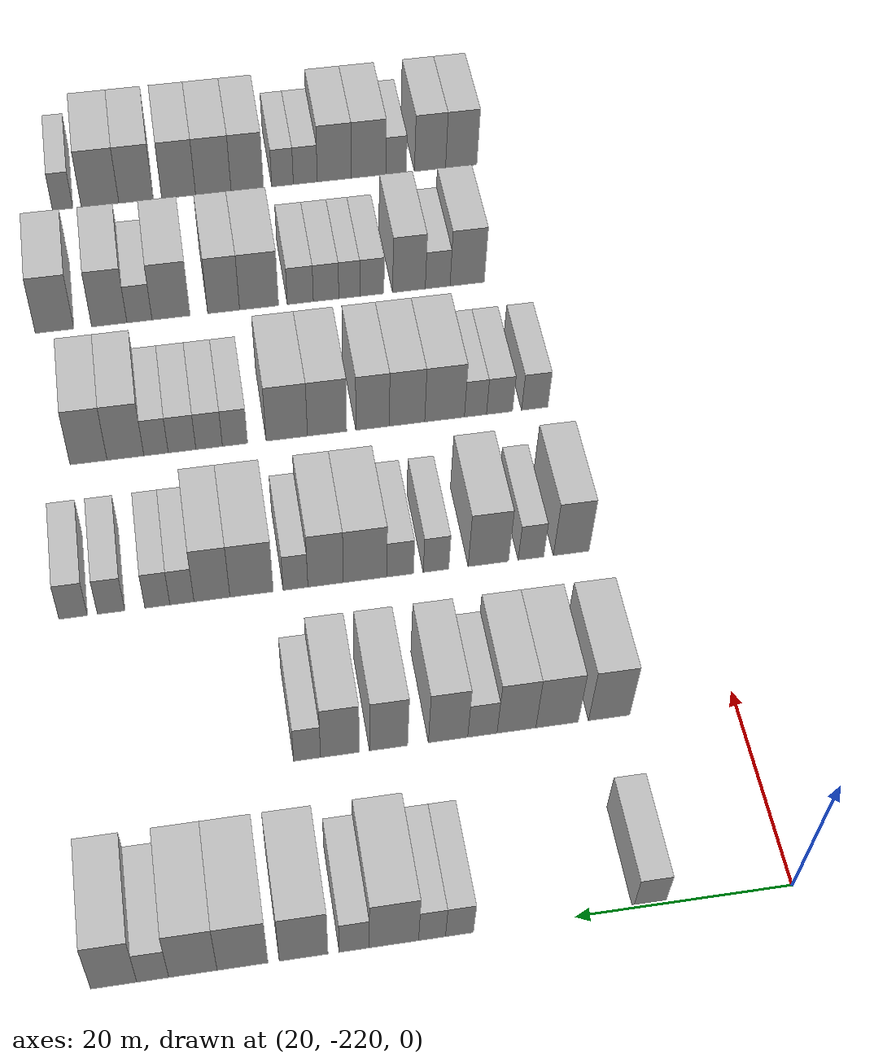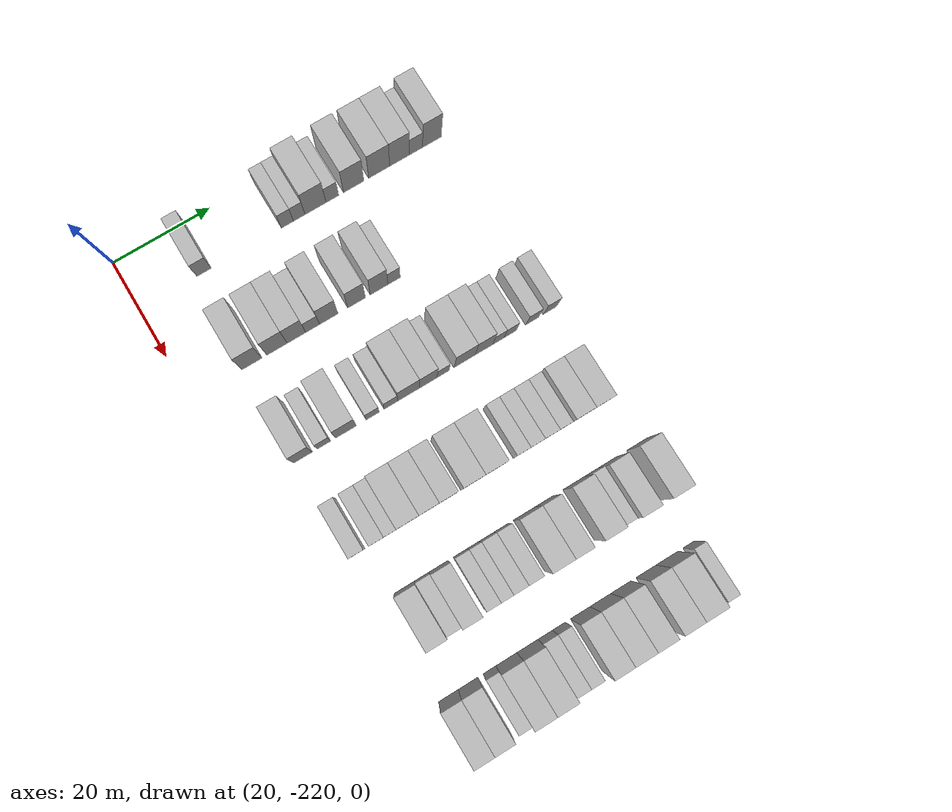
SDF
<sdf version="1.6">
 <world name="default">
  <model name="building_37">
   <static>1</static>
   <pose>25.0000 -206.7045 0 0.000000 0.000000 0.000000</pose>
   <link name="link">
    <pose>0 0 3.00 0 0 0</pose>
    <collision name="collision"><geometry><box><size>10.0000 2.9430 6.0000</size></box></geometry></collision>
    <visual name="visual">
     <cast_shadows>0</cast_shadows>
     <geometry><box><size>10.0000 2.9430 6.0000</size></box></geometry>
     <material>
      <script>
       <uri>model://HANNAS_wall/materials/scripts</uri>
       <uri>model://HANNAS_wall/materials/textures</uri>
       <name>vrc/HANNAS_wall</name>
      </script>
     </material>
    </visual>
   </link>
  </model>
  <model name="building_38">
   <static>1</static>
   <pose>25.0000 -189.4666 0 0.000000 0.000000 0.000000</pose>
   <link name="link">
    <pose>0 0 3.00 0 0 0</pose>
    <collision name="collision"><geometry><box><size>10.0000 2.5109 6.0000</size></box></geometry></collision>
    <visual name="visual">
     <cast_shadows>0</cast_shadows>
     <geometry><box><size>10.0000 2.5109 6.0000</size></box></geometry>
     <material>
      <script>
       <uri>model://HANNAS_wall/materials/scripts</uri>
       <uri>model://HANNAS_wall/materials/textures</uri>
       <name>vrc/HANNAS_wall</name>
      </script>
     </material>
    </visual>
   </link>
  </model>
  <model name="building_39">
   <static>1</static>
   <pose>25.0000 -187.0037 0 0.000000 0.000000 0.000000</pose>
   <link name="link">
    <pose>0 0 3.00 0 0 0</pose>
    <collision name="collision"><geometry><box><size>10.0000 2.4149 6.0000</size></box></geometry></collision>
    <visual name="visual">
     <cast_shadows>0</cast_shadows>
     <geometry><box><size>10.0000 2.4149 6.0000</size></box></geometry>
     <material>
      <script>
       <uri>model://HANNAS_wall/materials/scripts</uri>
       <uri>model://HANNAS_wall/materials/textures</uri>
       <name>vrc/HANNAS_wall</name>
      </script>
     </material>
    </visual>
   </link>
  </model>
  <model name="building_40">
   <static>1</static>
   <pose>25.0000 -183.5904 0 0.000000 0.000000 0.000000</pose>
   <link name="link">
    <pose>0 0 4.50 0 0 0</pose>
    <collision name="collision"><geometry><box><size>10.0000 4.4115 9.0000</size></box></geometry></collision>
    <visual name="visual">
     <cast_shadows>0</cast_shadows>
     <geometry><box><size>10.0000 4.4115 9.0000</size></box></geometry>
     <material>
      <script>
       <uri>model://HANNAS_wall/materials/scripts</uri>
       <uri>model://HANNAS_wall/materials/textures</uri>
       <name>vrc/HANNAS_wall</name>
      </script>
     </material>
    </visual>
   </link>
  </model>
  <model name="building_41">
   <static>1</static>
   <pose>25.0000 -180.0498 0 0.000000 0.000000 0.000000</pose>
   <link name="link">
    <pose>0 0 3.00 0 0 0</pose>
    <collision name="collision"><geometry><box><size>10.0000 2.6697 6.0000</size></box></geometry></collision>
    <visual name="visual">
     <cast_shadows>0</cast_shadows>
     <geometry><box><size>10.0000 2.6697 6.0000</size></box></geometry>
     <material>
      <script>
       <uri>model://HANNAS_wall/materials/scripts</uri>
       <uri>model://HANNAS_wall/materials/textures</uri>
       <name>vrc/HANNAS_wall</name>
      </script>
     </material>
    </visual>
   </link>
  </model>
  <model name="building_42">
   <static>1</static>
   <pose>25.0000 -175.5593 0 0.000000 0.000000 0.000000</pose>
   <link name="link">
    <pose>0 0 4.50 0 0 0</pose>
    <collision name="collision"><geometry><box><size>10.0000 4.3114 9.0000</size></box></geometry></collision>
    <visual name="visual">
     <cast_shadows>0</cast_shadows>
     <geometry><box><size>10.0000 4.3114 9.0000</size></box></geometry>
     <material>
      <script>
       <uri>model://HANNAS_wall/materials/scripts</uri>
       <uri>model://HANNAS_wall/materials/textures</uri>
       <name>vrc/HANNAS_wall</name>
      </script>
     </material>
    </visual>
   </link>
  </model>
  <model name="building_43">
   <static>1</static>
   <pose>25.0000 -170.1686 0 0.000000 0.000000 0.000000</pose>
   <link name="link">
    <pose>0 0 4.50 0 0 0</pose>
    <collision name="collision"><geometry><box><size>10.0000 4.4700 9.0000</size></box></geometry></collision>
    <visual name="visual">
     <cast_shadows>0</cast_shadows>
     <geometry><box><size>10.0000 4.4700 9.0000</size></box></geometry>
     <material>
      <script>
       <uri>model://HANNAS_wall/materials/scripts</uri>
       <uri>model://HANNAS_wall/materials/textures</uri>
       <name>vrc/HANNAS_wall</name>
      </script>
     </material>
    </visual>
   </link>
  </model>
  <model name="building_44">
   <static>1</static>
   <pose>25.0000 -165.8126 0 0.000000 0.000000 0.000000</pose>
   <link name="link">
    <pose>0 0 4.50 0 0 0</pose>
    <collision name="collision"><geometry><box><size>10.0000 4.2421 9.0000</size></box></geometry></collision>
    <visual name="visual">
     <cast_shadows>0</cast_shadows>
     <geometry><box><size>10.0000 4.2421 9.0000</size></box></geometry>
     <material>
      <script>
       <uri>model://HANNAS_wall/materials/scripts</uri>
       <uri>model://HANNAS_wall/materials/textures</uri>
       <name>vrc/HANNAS_wall</name>
      </script>
     </material>
    </visual>
   </link>
  </model>
  <model name="building_45">
   <static>1</static>
   <pose>25.0000 -162.2999 0 0.000000 0.000000 0.000000</pose>
   <link name="link">
    <pose>0 0 3.00 0 0 0</pose>
    <collision name="collision"><geometry><box><size>10.0000 2.7833 6.0000</size></box></geometry></collision>
    <visual name="visual">
     <cast_shadows>0</cast_shadows>
     <geometry><box><size>10.0000 2.7833 6.0000</size></box></geometry>
     <material>
      <script>
       <uri>model://HANNAS_wall/materials/scripts</uri>
       <uri>model://HANNAS_wall/materials/textures</uri>
       <name>vrc/HANNAS_wall</name>
      </script>
     </material>
    </visual>
   </link>
  </model>
  <model name="building_46">
   <static>1</static>
   <pose>25.0000 -158.9069 0 0.000000 0.000000 0.000000</pose>
   <link name="link">
    <pose>0 0 4.50 0 0 0</pose>
    <collision name="collision"><geometry><box><size>10.0000 4.0026 9.0000</size></box></geometry></collision>
    <visual name="visual">
     <cast_shadows>0</cast_shadows>
     <geometry><box><size>10.0000 4.0026 9.0000</size></box></geometry>
     <material>
      <script>
       <uri>model://HANNAS_wall/materials/scripts</uri>
       <uri>model://HANNAS_wall/materials/textures</uri>
       <name>vrc/HANNAS_wall</name>
      </script>
     </material>
    </visual>
   </link>
  </model>
  <model name="building_205">
   <static>1</static>
   <pose>44.0000 -207.5857 0 0.000000 0.000000 0.000000</pose>
   <link name="link">
    <pose>0 0 4.50 0 0 0</pose>
    <collision name="collision"><geometry><box><size>10.0000 4.0561 9.0000</size></box></geometry></collision>
    <visual name="visual">
     <cast_shadows>0</cast_shadows>
     <geometry><box><size>10.0000 4.0561 9.0000</size></box></geometry>
     <material>
      <script>
       <uri>model://HANNAS_wall/materials/scripts</uri>
       <uri>model://HANNAS_wall/materials/textures</uri>
       <name>vrc/HANNAS_wall</name>
      </script>
     </material>
    </visual>
   </link>
  </model>
  <model name="building_206">
   <static>1</static>
   <pose>44.0000 -202.4815 0 0.000000 0.000000 0.000000</pose>
   <link name="link">
    <pose>0 0 4.50 0 0 0</pose>
    <collision name="collision"><geometry><box><size>10.0000 4.1524 9.0000</size></box></geometry></collision>
    <visual name="visual">
     <cast_shadows>0</cast_shadows>
     <geometry><box><size>10.0000 4.1524 9.0000</size></box></geometry>
     <material>
      <script>
       <uri>model://HANNAS_wall/materials/scripts</uri>
       <uri>model://HANNAS_wall/materials/textures</uri>
       <name>vrc/HANNAS_wall</name>
      </script>
     </material>
    </visual>
   </link>
  </model>
  <model name="building_207">
   <static>1</static>
   <pose>44.0000 -198.5167 0 0.000000 0.000000 0.000000</pose>
   <link name="link">
    <pose>0 0 4.50 0 0 0</pose>
    <collision name="collision"><geometry><box><size>10.0000 3.7772 9.0000</size></box></geometry></collision>
    <visual name="visual">
     <cast_shadows>0</cast_shadows>
     <geometry><box><size>10.0000 3.7772 9.0000</size></box></geometry>
     <material>
      <script>
       <uri>model://HANNAS_wall/materials/scripts</uri>
       <uri>model://HANNAS_wall/materials/textures</uri>
       <name>vrc/HANNAS_wall</name>
      </script>
     </material>
    </visual>
   </link>
  </model>
  <model name="building_208">
   <static>1</static>
   <pose>44.0000 -195.2069 0 0.000000 0.000000 0.000000</pose>
   <link name="link">
    <pose>0 0 3.00 0 0 0</pose>
    <collision name="collision"><geometry><box><size>10.0000 2.8422 6.0000</size></box></geometry></collision>
    <visual name="visual">
     <cast_shadows>0</cast_shadows>
     <geometry><box><size>10.0000 2.8422 6.0000</size></box></geometry>
     <material>
      <script>
       <uri>model://HANNAS_wall/materials/scripts</uri>
       <uri>model://HANNAS_wall/materials/textures</uri>
       <name>vrc/HANNAS_wall</name>
      </script>
     </material>
    </visual>
   </link>
  </model>
  <model name="building_209">
   <static>1</static>
   <pose>44.0000 -191.8898 0 0.000000 0.000000 0.000000</pose>
   <link name="link">
    <pose>0 0 4.50 0 0 0</pose>
    <collision name="collision"><geometry><box><size>10.0000 3.7921 9.0000</size></box></geometry></collision>
    <visual name="visual">
     <cast_shadows>0</cast_shadows>
     <geometry><box><size>10.0000 3.7921 9.0000</size></box></geometry>
     <material>
      <script>
       <uri>model://HANNAS_wall/materials/scripts</uri>
       <uri>model://HANNAS_wall/materials/textures</uri>
       <name>vrc/HANNAS_wall</name>
      </script>
     </material>
    </visual>
   </link>
  </model>
  <model name="building_210">
   <static>1</static>
   <pose>44.0000 -186.1629 0 0.000000 0.000000 0.000000</pose>
   <link name="link">
    <pose>0 0 4.50 0 0 0</pose>
    <collision name="collision"><geometry><box><size>10.0000 3.6616 9.0000</size></box></geometry></collision>
    <visual name="visual">
     <cast_shadows>0</cast_shadows>
     <geometry><box><size>10.0000 3.6616 9.0000</size></box></geometry>
     <material>
      <script>
       <uri>model://HANNAS_wall/materials/scripts</uri>
       <uri>model://HANNAS_wall/materials/textures</uri>
       <name>vrc/HANNAS_wall</name>
      </script>
     </material>
    </visual>
   </link>
  </model>
  <model name="building_211">
   <static>1</static>
   <pose>44.0000 -181.4975 0 0.000000 0.000000 0.000000</pose>
   <link name="link">
    <pose>0 0 4.50 0 0 0</pose>
    <collision name="collision"><geometry><box><size>10.0000 3.6692 9.0000</size></box></geometry></collision>
    <visual name="visual">
     <cast_shadows>0</cast_shadows>
     <geometry><box><size>10.0000 3.6692 9.0000</size></box></geometry>
     <material>
      <script>
       <uri>model://HANNAS_wall/materials/scripts</uri>
       <uri>model://HANNAS_wall/materials/textures</uri>
       <name>vrc/HANNAS_wall</name>
      </script>
     </material>
    </visual>
   </link>
  </model>
  <model name="building_212">
   <static>1</static>
   <pose>44.0000 -178.3817 0 0.000000 0.000000 0.000000</pose>
   <link name="link">
    <pose>0 0 3.00 0 0 0</pose>
    <collision name="collision"><geometry><box><size>10.0000 2.5624 6.0000</size></box></geometry></collision>
    <visual name="visual">
     <cast_shadows>0</cast_shadows>
     <geometry><box><size>10.0000 2.5624 6.0000</size></box></geometry>
     <material>
      <script>
       <uri>model://HANNAS_wall/materials/scripts</uri>
       <uri>model://HANNAS_wall/materials/textures</uri>
       <name>vrc/HANNAS_wall</name>
      </script>
     </material>
    </visual>
   </link>
  </model>
  <model name="building_363">
   <static>1</static>
   <pose>63.0000 -208.1413 0 0.000000 0.000000 0.000000</pose>
   <link name="link">
    <pose>0 0 4.50 0 0 0</pose>
    <collision name="collision"><geometry><box><size>10.0000 3.7291 9.0000</size></box></geometry></collision>
    <visual name="visual">
     <cast_shadows>0</cast_shadows>
     <geometry><box><size>10.0000 3.7291 9.0000</size></box></geometry>
     <material>
      <script>
       <uri>model://HANNAS_wall/materials/scripts</uri>
       <uri>model://HANNAS_wall/materials/textures</uri>
       <name>vrc/HANNAS_wall</name>
      </script>
     </material>
    </visual>
   </link>
  </model>
  <model name="building_364">
   <static>1</static>
   <pose>63.0000 -203.9424 0 0.000000 0.000000 0.000000</pose>
   <link name="link">
    <pose>0 0 3.00 0 0 0</pose>
    <collision name="collision"><geometry><box><size>10.0000 2.6686 6.0000</size></box></geometry></collision>
    <visual name="visual">
     <cast_shadows>0</cast_shadows>
     <geometry><box><size>10.0000 2.6686 6.0000</size></box></geometry>
     <material>
      <script>
       <uri>model://HANNAS_wall/materials/scripts</uri>
       <uri>model://HANNAS_wall/materials/textures</uri>
       <name>vrc/HANNAS_wall</name>
      </script>
     </material>
    </visual>
   </link>
  </model>
  <model name="building_365">
   <static>1</static>
   <pose>63.0000 -199.5128 0 0.000000 0.000000 0.000000</pose>
   <link name="link">
    <pose>0 0 4.50 0 0 0</pose>
    <collision name="collision"><geometry><box><size>10.0000 4.1906 9.0000</size></box></geometry></collision>
    <visual name="visual">
     <cast_shadows>0</cast_shadows>
     <geometry><box><size>10.0000 4.1906 9.0000</size></box></geometry>
     <material>
      <script>
       <uri>model://HANNAS_wall/materials/scripts</uri>
       <uri>model://HANNAS_wall/materials/textures</uri>
       <name>vrc/HANNAS_wall</name>
      </script>
     </material>
    </visual>
   </link>
  </model>
  <model name="building_366">
   <static>1</static>
   <pose>63.0000 -194.0963 0 0.000000 0.000000 0.000000</pose>
   <link name="link">
    <pose>0 0 3.00 0 0 0</pose>
    <collision name="collision"><geometry><box><size>10.0000 2.6425 6.0000</size></box></geometry></collision>
    <visual name="visual">
     <cast_shadows>0</cast_shadows>
     <geometry><box><size>10.0000 2.6425 6.0000</size></box></geometry>
     <material>
      <script>
       <uri>model://HANNAS_wall/materials/scripts</uri>
       <uri>model://HANNAS_wall/materials/textures</uri>
       <name>vrc/HANNAS_wall</name>
      </script>
     </material>
    </visual>
   </link>
  </model>
  <model name="building_367">
   <static>1</static>
   <pose>63.0000 -190.3912 0 0.000000 0.000000 0.000000</pose>
   <link name="link">
    <pose>0 0 3.00 0 0 0</pose>
    <collision name="collision"><geometry><box><size>10.0000 2.7676 6.0000</size></box></geometry></collision>
    <visual name="visual">
     <cast_shadows>0</cast_shadows>
     <geometry><box><size>10.0000 2.7676 6.0000</size></box></geometry>
     <material>
      <script>
       <uri>model://HANNAS_wall/materials/scripts</uri>
       <uri>model://HANNAS_wall/materials/textures</uri>
       <name>vrc/HANNAS_wall</name>
      </script>
     </material>
    </visual>
   </link>
  </model>
  <model name="building_368">
   <static>1</static>
   <pose>63.0000 -186.7973 0 0.000000 0.000000 0.000000</pose>
   <link name="link">
    <pose>0 0 4.50 0 0 0</pose>
    <collision name="collision"><geometry><box><size>10.0000 4.4201 9.0000</size></box></geometry></collision>
    <visual name="visual">
     <cast_shadows>0</cast_shadows>
     <geometry><box><size>10.0000 4.4201 9.0000</size></box></geometry>
     <material>
      <script>
       <uri>model://HANNAS_wall/materials/scripts</uri>
       <uri>model://HANNAS_wall/materials/textures</uri>
       <name>vrc/HANNAS_wall</name>
      </script>
     </material>
    </visual>
   </link>
  </model>
  <model name="building_369">
   <static>1</static>
   <pose>63.0000 -182.7785 0 0.000000 0.000000 0.000000</pose>
   <link name="link">
    <pose>0 0 4.50 0 0 0</pose>
    <collision name="collision"><geometry><box><size>10.0000 3.6176 9.0000</size></box></geometry></collision>
    <visual name="visual">
     <cast_shadows>0</cast_shadows>
     <geometry><box><size>10.0000 3.6176 9.0000</size></box></geometry>
     <material>
      <script>
       <uri>model://HANNAS_wall/materials/scripts</uri>
       <uri>model://HANNAS_wall/materials/textures</uri>
       <name>vrc/HANNAS_wall</name>
      </script>
     </material>
    </visual>
   </link>
  </model>
  <model name="building_370">
   <static>1</static>
   <pose>63.0000 -179.7149 0 0.000000 0.000000 0.000000</pose>
   <link name="link">
    <pose>0 0 3.00 0 0 0</pose>
    <collision name="collision"><geometry><box><size>10.0000 2.5095 6.0000</size></box></geometry></collision>
    <visual name="visual">
     <cast_shadows>0</cast_shadows>
     <geometry><box><size>10.0000 2.5095 6.0000</size></box></geometry>
     <material>
      <script>
       <uri>model://HANNAS_wall/materials/scripts</uri>
       <uri>model://HANNAS_wall/materials/textures</uri>
       <name>vrc/HANNAS_wall</name>
      </script>
     </material>
    </visual>
   </link>
  </model>
  <model name="building_371">
   <static>1</static>
   <pose>63.0000 -175.2652 0 0.000000 0.000000 0.000000</pose>
   <link name="link">
    <pose>0 0 4.50 0 0 0</pose>
    <collision name="collision"><geometry><box><size>10.0000 4.3900 9.0000</size></box></geometry></collision>
    <visual name="visual">
     <cast_shadows>0</cast_shadows>
     <geometry><box><size>10.0000 4.3900 9.0000</size></box></geometry>
     <material>
      <script>
       <uri>model://HANNAS_wall/materials/scripts</uri>
       <uri>model://HANNAS_wall/materials/textures</uri>
       <name>vrc/HANNAS_wall</name>
      </script>
     </material>
    </visual>
   </link>
  </model>
  <model name="building_372">
   <static>1</static>
   <pose>63.0000 -171.2606 0 0.000000 0.000000 0.000000</pose>
   <link name="link">
    <pose>0 0 4.50 0 0 0</pose>
    <collision name="collision"><geometry><box><size>10.0000 3.6193 9.0000</size></box></geometry></collision>
    <visual name="visual">
     <cast_shadows>0</cast_shadows>
     <geometry><box><size>10.0000 3.6193 9.0000</size></box></geometry>
     <material>
      <script>
       <uri>model://HANNAS_wall/materials/scripts</uri>
       <uri>model://HANNAS_wall/materials/textures</uri>
       <name>vrc/HANNAS_wall</name>
      </script>
     </material>
    </visual>
   </link>
  </model>
  <model name="building_373">
   <static>1</static>
   <pose>63.0000 -168.2411 0 0.000000 0.000000 0.000000</pose>
   <link name="link">
    <pose>0 0 3.00 0 0 0</pose>
    <collision name="collision"><geometry><box><size>10.0000 2.4196 6.0000</size></box></geometry></collision>
    <visual name="visual">
     <cast_shadows>0</cast_shadows>
     <geometry><box><size>10.0000 2.4196 6.0000</size></box></geometry>
     <material>
      <script>
       <uri>model://HANNAS_wall/materials/scripts</uri>
       <uri>model://HANNAS_wall/materials/textures</uri>
       <name>vrc/HANNAS_wall</name>
      </script>
     </material>
    </visual>
   </link>
  </model>
  <model name="building_374">
   <static>1</static>
   <pose>63.0000 -165.7747 0 0.000000 0.000000 0.000000</pose>
   <link name="link">
    <pose>0 0 3.00 0 0 0</pose>
    <collision name="collision"><geometry><box><size>10.0000 2.5132 6.0000</size></box></geometry></collision>
    <visual name="visual">
     <cast_shadows>0</cast_shadows>
     <geometry><box><size>10.0000 2.5132 6.0000</size></box></geometry>
     <material>
      <script>
       <uri>model://HANNAS_wall/materials/scripts</uri>
       <uri>model://HANNAS_wall/materials/textures</uri>
       <name>vrc/HANNAS_wall</name>
      </script>
     </material>
    </visual>
   </link>
  </model>
  <model name="building_375">
   <static>1</static>
   <pose>63.0000 -161.1478 0 0.000000 0.000000 0.000000</pose>
   <link name="link">
    <pose>0 0 3.00 0 0 0</pose>
    <collision name="collision"><geometry><box><size>10.0000 2.7405 6.0000</size></box></geometry></collision>
    <visual name="visual">
     <cast_shadows>0</cast_shadows>
     <geometry><box><size>10.0000 2.7405 6.0000</size></box></geometry>
     <material>
      <script>
       <uri>model://HANNAS_wall/materials/scripts</uri>
       <uri>model://HANNAS_wall/materials/textures</uri>
       <name>vrc/HANNAS_wall</name>
      </script>
     </material>
    </visual>
   </link>
  </model>
  <model name="building_376">
   <static>1</static>
   <pose>63.0000 -157.3685 0 0.000000 0.000000 0.000000</pose>
   <link name="link">
    <pose>0 0 3.00 0 0 0</pose>
    <collision name="collision"><geometry><box><size>10.0000 2.8181 6.0000</size></box></geometry></collision>
    <visual name="visual">
     <cast_shadows>0</cast_shadows>
     <geometry><box><size>10.0000 2.8181 6.0000</size></box></geometry>
     <material>
      <script>
       <uri>model://HANNAS_wall/materials/scripts</uri>
       <uri>model://HANNAS_wall/materials/textures</uri>
       <name>vrc/HANNAS_wall</name>
      </script>
     </material>
    </visual>
   </link>
  </model>
  <model name="building_538">
   <static>1</static>
   <pose>82.0000 -208.3647 0 0.000000 0.000000 0.000000</pose>
   <link name="link">
    <pose>0 0 3.00 0 0 0</pose>
    <collision name="collision"><geometry><box><size>10.0000 2.9164 6.0000</size></box></geometry></collision>
    <visual name="visual">
     <cast_shadows>0</cast_shadows>
     <geometry><box><size>10.0000 2.9164 6.0000</size></box></geometry>
     <material>
      <script>
       <uri>model://HANNAS_wall/materials/scripts</uri>
       <uri>model://HANNAS_wall/materials/textures</uri>
       <name>vrc/HANNAS_wall</name>
      </script>
     </material>
    </visual>
   </link>
  </model>
  <model name="building_539">
   <static>1</static>
   <pose>82.0000 -204.4645 0 0.000000 0.000000 0.000000</pose>
   <link name="link">
    <pose>0 0 3.00 0 0 0</pose>
    <collision name="collision"><geometry><box><size>10.0000 2.8841 6.0000</size></box></geometry></collision>
    <visual name="visual">
     <cast_shadows>0</cast_shadows>
     <geometry><box><size>10.0000 2.8841 6.0000</size></box></geometry>
     <material>
      <script>
       <uri>model://HANNAS_wall/materials/scripts</uri>
       <uri>model://HANNAS_wall/materials/textures</uri>
       <name>vrc/HANNAS_wall</name>
      </script>
     </material>
    </visual>
   </link>
  </model>
  <model name="building_540">
   <static>1</static>
   <pose>82.0000 -201.8047 0 0.000000 0.000000 0.000000</pose>
   <link name="link">
    <pose>0 0 3.00 0 0 0</pose>
    <collision name="collision"><geometry><box><size>10.0000 2.4354 6.0000</size></box></geometry></collision>
    <visual name="visual">
     <cast_shadows>0</cast_shadows>
     <geometry><box><size>10.0000 2.4354 6.0000</size></box></geometry>
     <material>
      <script>
       <uri>model://HANNAS_wall/materials/scripts</uri>
       <uri>model://HANNAS_wall/materials/textures</uri>
       <name>vrc/HANNAS_wall</name>
      </script>
     </material>
    </visual>
   </link>
  </model>
  <model name="building_541">
   <static>1</static>
   <pose>82.0000 -198.4060 0 0.000000 0.000000 0.000000</pose>
   <link name="link">
    <pose>0 0 4.50 0 0 0</pose>
    <collision name="collision"><geometry><box><size>10.0000 4.3621 9.0000</size></box></geometry></collision>
    <visual name="visual">
     <cast_shadows>0</cast_shadows>
     <geometry><box><size>10.0000 4.3621 9.0000</size></box></geometry>
     <material>
      <script>
       <uri>model://HANNAS_wall/materials/scripts</uri>
       <uri>model://HANNAS_wall/materials/textures</uri>
       <name>vrc/HANNAS_wall</name>
      </script>
     </material>
    </visual>
   </link>
  </model>
  <model name="building_542">
   <static>1</static>
   <pose>82.0000 -194.2751 0 0.000000 0.000000 0.000000</pose>
   <link name="link">
    <pose>0 0 4.50 0 0 0</pose>
    <collision name="collision"><geometry><box><size>10.0000 3.8997 9.0000</size></box></geometry></collision>
    <visual name="visual">
     <cast_shadows>0</cast_shadows>
     <geometry><box><size>10.0000 3.8997 9.0000</size></box></geometry>
     <material>
      <script>
       <uri>model://HANNAS_wall/materials/scripts</uri>
       <uri>model://HANNAS_wall/materials/textures</uri>
       <name>vrc/HANNAS_wall</name>
      </script>
     </material>
    </visual>
   </link>
  </model>
  <model name="building_543">
   <static>1</static>
   <pose>82.0000 -190.5123 0 0.000000 0.000000 0.000000</pose>
   <link name="link">
    <pose>0 0 4.50 0 0 0</pose>
    <collision name="collision"><geometry><box><size>10.0000 3.6259 9.0000</size></box></geometry></collision>
    <visual name="visual">
     <cast_shadows>0</cast_shadows>
     <geometry><box><size>10.0000 3.6259 9.0000</size></box></geometry>
     <material>
      <script>
       <uri>model://HANNAS_wall/materials/scripts</uri>
       <uri>model://HANNAS_wall/materials/textures</uri>
       <name>vrc/HANNAS_wall</name>
      </script>
     </material>
    </visual>
   </link>
  </model>
  <model name="building_544">
   <static>1</static>
   <pose>82.0000 -185.5718 0 0.000000 0.000000 0.000000</pose>
   <link name="link">
    <pose>0 0 4.50 0 0 0</pose>
    <collision name="collision"><geometry><box><size>10.0000 4.2551 9.0000</size></box></geometry></collision>
    <visual name="visual">
     <cast_shadows>0</cast_shadows>
     <geometry><box><size>10.0000 4.2551 9.0000</size></box></geometry>
     <material>
      <script>
       <uri>model://HANNAS_wall/materials/scripts</uri>
       <uri>model://HANNAS_wall/materials/textures</uri>
       <name>vrc/HANNAS_wall</name>
      </script>
     </material>
    </visual>
   </link>
  </model>
  <model name="building_545">
   <static>1</static>
   <pose>82.0000 -181.2103 0 0.000000 0.000000 0.000000</pose>
   <link name="link">
    <pose>0 0 4.50 0 0 0</pose>
    <collision name="collision"><geometry><box><size>10.0000 4.4679 9.0000</size></box></geometry></collision>
    <visual name="visual">
     <cast_shadows>0</cast_shadows>
     <geometry><box><size>10.0000 4.4679 9.0000</size></box></geometry>
     <material>
      <script>
       <uri>model://HANNAS_wall/materials/scripts</uri>
       <uri>model://HANNAS_wall/materials/textures</uri>
       <name>vrc/HANNAS_wall</name>
      </script>
     </material>
    </visual>
   </link>
  </model>
  <model name="building_546">
   <static>1</static>
   <pose>82.0000 -175.6216 0 0.000000 0.000000 0.000000</pose>
   <link name="link">
    <pose>0 0 3.00 0 0 0</pose>
    <collision name="collision"><geometry><box><size>10.0000 2.7094 6.0000</size></box></geometry></collision>
    <visual name="visual">
     <cast_shadows>0</cast_shadows>
     <geometry><box><size>10.0000 2.7094 6.0000</size></box></geometry>
     <material>
      <script>
       <uri>model://HANNAS_wall/materials/scripts</uri>
       <uri>model://HANNAS_wall/materials/textures</uri>
       <name>vrc/HANNAS_wall</name>
      </script>
     </material>
    </visual>
   </link>
  </model>
  <model name="building_547">
   <static>1</static>
   <pose>82.0000 -172.8440 0 0.000000 0.000000 0.000000</pose>
   <link name="link">
    <pose>0 0 3.00 0 0 0</pose>
    <collision name="collision"><geometry><box><size>10.0000 2.8458 6.0000</size></box></geometry></collision>
    <visual name="visual">
     <cast_shadows>0</cast_shadows>
     <geometry><box><size>10.0000 2.8458 6.0000</size></box></geometry>
     <material>
      <script>
       <uri>model://HANNAS_wall/materials/scripts</uri>
       <uri>model://HANNAS_wall/materials/textures</uri>
       <name>vrc/HANNAS_wall</name>
      </script>
     </material>
    </visual>
   </link>
  </model>
  <model name="building_548">
   <static>1</static>
   <pose>82.0000 -169.9415 0 0.000000 0.000000 0.000000</pose>
   <link name="link">
    <pose>0 0 3.00 0 0 0</pose>
    <collision name="collision"><geometry><box><size>10.0000 2.9591 6.0000</size></box></geometry></collision>
    <visual name="visual">
     <cast_shadows>0</cast_shadows>
     <geometry><box><size>10.0000 2.9591 6.0000</size></box></geometry>
     <material>
      <script>
       <uri>model://HANNAS_wall/materials/scripts</uri>
       <uri>model://HANNAS_wall/materials/textures</uri>
       <name>vrc/HANNAS_wall</name>
      </script>
     </material>
    </visual>
   </link>
  </model>
  <model name="building_549">
   <static>1</static>
   <pose>82.0000 -167.1595 0 0.000000 0.000000 0.000000</pose>
   <link name="link">
    <pose>0 0 3.00 0 0 0</pose>
    <collision name="collision"><geometry><box><size>10.0000 2.6050 6.0000</size></box></geometry></collision>
    <visual name="visual">
     <cast_shadows>0</cast_shadows>
     <geometry><box><size>10.0000 2.6050 6.0000</size></box></geometry>
     <material>
      <script>
       <uri>model://HANNAS_wall/materials/scripts</uri>
       <uri>model://HANNAS_wall/materials/textures</uri>
       <name>vrc/HANNAS_wall</name>
      </script>
     </material>
    </visual>
   </link>
  </model>
  <model name="building_550">
   <static>1</static>
   <pose>82.0000 -163.9021 0 0.000000 0.000000 0.000000</pose>
   <link name="link">
    <pose>0 0 4.50 0 0 0</pose>
    <collision name="collision"><geometry><box><size>10.0000 3.9098 9.0000</size></box></geometry></collision>
    <visual name="visual">
     <cast_shadows>0</cast_shadows>
     <geometry><box><size>10.0000 3.9098 9.0000</size></box></geometry>
     <material>
      <script>
       <uri>model://HANNAS_wall/materials/scripts</uri>
       <uri>model://HANNAS_wall/materials/textures</uri>
       <name>vrc/HANNAS_wall</name>
      </script>
     </material>
    </visual>
   </link>
  </model>
  <model name="building_551">
   <static>1</static>
   <pose>82.0000 -159.9857 0 0.000000 0.000000 0.000000</pose>
   <link name="link">
    <pose>0 0 4.50 0 0 0</pose>
    <collision name="collision"><geometry><box><size>10.0000 3.9229 9.0000</size></box></geometry></collision>
    <visual name="visual">
     <cast_shadows>0</cast_shadows>
     <geometry><box><size>10.0000 3.9229 9.0000</size></box></geometry>
     <material>
      <script>
       <uri>model://HANNAS_wall/materials/scripts</uri>
       <uri>model://HANNAS_wall/materials/textures</uri>
       <name>vrc/HANNAS_wall</name>
      </script>
     </material>
    </visual>
   </link>
  </model>
  <model name="building_702">
   <static>1</static>
   <pose>101.0000 -204.4709 0 0.000000 0.000000 0.000000</pose>
   <link name="link">
    <pose>0 0 4.50 0 0 0</pose>
    <collision name="collision"><geometry><box><size>10.0000 3.9938 9.0000</size></box></geometry></collision>
    <visual name="visual">
     <cast_shadows>0</cast_shadows>
     <geometry><box><size>10.0000 3.9938 9.0000</size></box></geometry>
     <material>
      <script>
       <uri>model://HANNAS_wall/materials/scripts</uri>
       <uri>model://HANNAS_wall/materials/textures</uri>
       <name>vrc/HANNAS_wall</name>
      </script>
     </material>
    </visual>
   </link>
  </model>
  <model name="building_703">
   <static>1</static>
   <pose>101.0000 -201.0301 0 0.000000 0.000000 0.000000</pose>
   <link name="link">
    <pose>0 0 3.00 0 0 0</pose>
    <collision name="collision"><geometry><box><size>10.0000 2.8878 6.0000</size></box></geometry></collision>
    <visual name="visual">
     <cast_shadows>0</cast_shadows>
     <geometry><box><size>10.0000 2.8878 6.0000</size></box></geometry>
     <material>
      <script>
       <uri>model://HANNAS_wall/materials/scripts</uri>
       <uri>model://HANNAS_wall/materials/textures</uri>
       <name>vrc/HANNAS_wall</name>
      </script>
     </material>
    </visual>
   </link>
  </model>
  <model name="building_704">
   <static>1</static>
   <pose>101.0000 -197.6842 0 0.000000 0.000000 0.000000</pose>
   <link name="link">
    <pose>0 0 4.50 0 0 0</pose>
    <collision name="collision"><geometry><box><size>10.0000 3.8040 9.0000</size></box></geometry></collision>
    <visual name="visual">
     <cast_shadows>0</cast_shadows>
     <geometry><box><size>10.0000 3.8040 9.0000</size></box></geometry>
     <material>
      <script>
       <uri>model://HANNAS_wall/materials/scripts</uri>
       <uri>model://HANNAS_wall/materials/textures</uri>
       <name>vrc/HANNAS_wall</name>
      </script>
     </material>
    </visual>
   </link>
  </model>
  <model name="building_705">
   <static>1</static>
   <pose>101.0000 -193.3869 0 0.000000 0.000000 0.000000</pose>
   <link name="link">
    <pose>0 0 3.00 0 0 0</pose>
    <collision name="collision"><geometry><box><size>10.0000 2.7906 6.0000</size></box></geometry></collision>
    <visual name="visual">
     <cast_shadows>0</cast_shadows>
     <geometry><box><size>10.0000 2.7906 6.0000</size></box></geometry>
     <material>
      <script>
       <uri>model://HANNAS_wall/materials/scripts</uri>
       <uri>model://HANNAS_wall/materials/textures</uri>
       <name>vrc/HANNAS_wall</name>
      </script>
     </material>
    </visual>
   </link>
  </model>
  <model name="building_706">
   <static>1</static>
   <pose>101.0000 -190.7778 0 0.000000 0.000000 0.000000</pose>
   <link name="link">
    <pose>0 0 3.00 0 0 0</pose>
    <collision name="collision"><geometry><box><size>10.0000 2.4277 6.0000</size></box></geometry></collision>
    <visual name="visual">
     <cast_shadows>0</cast_shadows>
     <geometry><box><size>10.0000 2.4277 6.0000</size></box></geometry>
     <material>
      <script>
       <uri>model://HANNAS_wall/materials/scripts</uri>
       <uri>model://HANNAS_wall/materials/textures</uri>
       <name>vrc/HANNAS_wall</name>
      </script>
     </material>
    </visual>
   </link>
  </model>
  <model name="building_707">
   <static>1</static>
   <pose>101.0000 -188.1002 0 0.000000 0.000000 0.000000</pose>
   <link name="link">
    <pose>0 0 3.00 0 0 0</pose>
    <collision name="collision"><geometry><box><size>10.0000 2.9275 6.0000</size></box></geometry></collision>
    <visual name="visual">
     <cast_shadows>0</cast_shadows>
     <geometry><box><size>10.0000 2.9275 6.0000</size></box></geometry>
     <material>
      <script>
       <uri>model://HANNAS_wall/materials/scripts</uri>
       <uri>model://HANNAS_wall/materials/textures</uri>
       <name>vrc/HANNAS_wall</name>
      </script>
     </material>
    </visual>
   </link>
  </model>
  <model name="building_708">
   <static>1</static>
   <pose>101.0000 -185.1394 0 0.000000 0.000000 0.000000</pose>
   <link name="link">
    <pose>0 0 3.00 0 0 0</pose>
    <collision name="collision"><geometry><box><size>10.0000 2.9942 6.0000</size></box></geometry></collision>
    <visual name="visual">
     <cast_shadows>0</cast_shadows>
     <geometry><box><size>10.0000 2.9942 6.0000</size></box></geometry>
     <material>
      <script>
       <uri>model://HANNAS_wall/materials/scripts</uri>
       <uri>model://HANNAS_wall/materials/textures</uri>
       <name>vrc/HANNAS_wall</name>
      </script>
     </material>
    </visual>
   </link>
  </model>
  <model name="building_709">
   <static>1</static>
   <pose>101.0000 -180.4151 0 0.000000 0.000000 0.000000</pose>
   <link name="link">
    <pose>0 0 4.50 0 0 0</pose>
    <collision name="collision"><geometry><box><size>10.0000 4.4544 9.0000</size></box></geometry></collision>
    <visual name="visual">
     <cast_shadows>0</cast_shadows>
     <geometry><box><size>10.0000 4.4544 9.0000</size></box></geometry>
     <material>
      <script>
       <uri>model://HANNAS_wall/materials/scripts</uri>
       <uri>model://HANNAS_wall/materials/textures</uri>
       <name>vrc/HANNAS_wall</name>
      </script>
     </material>
    </visual>
   </link>
  </model>
  <model name="building_710">
   <static>1</static>
   <pose>101.0000 -176.3697 0 0.000000 0.000000 0.000000</pose>
   <link name="link">
    <pose>0 0 4.50 0 0 0</pose>
    <collision name="collision"><geometry><box><size>10.0000 3.6364 9.0000</size></box></geometry></collision>
    <visual name="visual">
     <cast_shadows>0</cast_shadows>
     <geometry><box><size>10.0000 3.6364 9.0000</size></box></geometry>
     <material>
      <script>
       <uri>model://HANNAS_wall/materials/scripts</uri>
       <uri>model://HANNAS_wall/materials/textures</uri>
       <name>vrc/HANNAS_wall</name>
      </script>
     </material>
    </visual>
   </link>
  </model>
  <model name="building_711">
   <static>1</static>
   <pose>101.0000 -170.3905 0 0.000000 0.000000 0.000000</pose>
   <link name="link">
    <pose>0 0 4.50 0 0 0</pose>
    <collision name="collision"><geometry><box><size>10.0000 4.3219 9.0000</size></box></geometry></collision>
    <visual name="visual">
     <cast_shadows>0</cast_shadows>
     <geometry><box><size>10.0000 4.3219 9.0000</size></box></geometry>
     <material>
      <script>
       <uri>model://HANNAS_wall/materials/scripts</uri>
       <uri>model://HANNAS_wall/materials/textures</uri>
       <name>vrc/HANNAS_wall</name>
      </script>
     </material>
    </visual>
   </link>
  </model>
  <model name="building_712">
   <static>1</static>
   <pose>101.0000 -166.8129 0 0.000000 0.000000 0.000000</pose>
   <link name="link">
    <pose>0 0 3.00 0 0 0</pose>
    <collision name="collision"><geometry><box><size>10.0000 2.8333 6.0000</size></box></geometry></collision>
    <visual name="visual">
     <cast_shadows>0</cast_shadows>
     <geometry><box><size>10.0000 2.8333 6.0000</size></box></geometry>
     <material>
      <script>
       <uri>model://HANNAS_wall/materials/scripts</uri>
       <uri>model://HANNAS_wall/materials/textures</uri>
       <name>vrc/HANNAS_wall</name>
      </script>
     </material>
    </visual>
   </link>
  </model>
  <model name="building_713">
   <static>1</static>
   <pose>101.0000 -163.4098 0 0.000000 0.000000 0.000000</pose>
   <link name="link">
    <pose>0 0 4.50 0 0 0</pose>
    <collision name="collision"><geometry><box><size>10.0000 3.9729 9.0000</size></box></geometry></collision>
    <visual name="visual">
     <cast_shadows>0</cast_shadows>
     <geometry><box><size>10.0000 3.9729 9.0000</size></box></geometry>
     <material>
      <script>
       <uri>model://HANNAS_wall/materials/scripts</uri>
       <uri>model://HANNAS_wall/materials/textures</uri>
       <name>vrc/HANNAS_wall</name>
      </script>
     </material>
    </visual>
   </link>
  </model>
  <model name="building_714">
   <static>1</static>
   <pose>101.0000 -157.2623 0 0.000000 0.000000 0.000000</pose>
   <link name="link">
    <pose>0 0 4.50 0 0 0</pose>
    <collision name="collision"><geometry><box><size>10.0000 4.3222 9.0000</size></box></geometry></collision>
    <visual name="visual">
     <cast_shadows>0</cast_shadows>
     <geometry><box><size>10.0000 4.3222 9.0000</size></box></geometry>
     <material>
      <script>
       <uri>model://HANNAS_wall/materials/scripts</uri>
       <uri>model://HANNAS_wall/materials/textures</uri>
       <name>vrc/HANNAS_wall</name>
      </script>
     </material>
    </visual>
   </link>
  </model>
  <model name="building_881">
   <static>1</static>
   <pose>120.0000 -207.3098 0 0.000000 0.000000 0.000000</pose>
   <link name="link">
    <pose>0 0 4.50 0 0 0</pose>
    <collision name="collision"><geometry><box><size>10.0000 3.8619 9.0000</size></box></geometry></collision>
    <visual name="visual">
     <cast_shadows>0</cast_shadows>
     <geometry><box><size>10.0000 3.8619 9.0000</size></box></geometry>
     <material>
      <script>
       <uri>model://HANNAS_wall/materials/scripts</uri>
       <uri>model://HANNAS_wall/materials/textures</uri>
       <name>vrc/HANNAS_wall</name>
      </script>
     </material>
    </visual>
   </link>
  </model>
  <model name="building_882">
   <static>1</static>
   <pose>120.0000 -203.4633 0 0.000000 0.000000 0.000000</pose>
   <link name="link">
    <pose>0 0 4.50 0 0 0</pose>
    <collision name="collision"><geometry><box><size>10.0000 3.8310 9.0000</size></box></geometry></collision>
    <visual name="visual">
     <cast_shadows>0</cast_shadows>
     <geometry><box><size>10.0000 3.8310 9.0000</size></box></geometry>
     <material>
      <script>
       <uri>model://HANNAS_wall/materials/scripts</uri>
       <uri>model://HANNAS_wall/materials/textures</uri>
       <name>vrc/HANNAS_wall</name>
      </script>
     </material>
    </visual>
   </link>
  </model>
  <model name="building_883">
   <static>1</static>
   <pose>120.0000 -199.2902 0 0.000000 0.000000 0.000000</pose>
   <link name="link">
    <pose>0 0 3.00 0 0 0</pose>
    <collision name="collision"><geometry><box><size>10.0000 2.5152 6.0000</size></box></geometry></collision>
    <visual name="visual">
     <cast_shadows>0</cast_shadows>
     <geometry><box><size>10.0000 2.5152 6.0000</size></box></geometry>
     <material>
      <script>
       <uri>model://HANNAS_wall/materials/scripts</uri>
       <uri>model://HANNAS_wall/materials/textures</uri>
       <name>vrc/HANNAS_wall</name>
      </script>
     </material>
    </visual>
   </link>
  </model>
  <model name="building_884">
   <static>1</static>
   <pose>120.0000 -195.9270 0 0.000000 0.000000 0.000000</pose>
   <link name="link">
    <pose>0 0 4.50 0 0 0</pose>
    <collision name="collision"><geometry><box><size>10.0000 4.2112 9.0000</size></box></geometry></collision>
    <visual name="visual">
     <cast_shadows>0</cast_shadows>
     <geometry><box><size>10.0000 4.2112 9.0000</size></box></geometry>
     <material>
      <script>
       <uri>model://HANNAS_wall/materials/scripts</uri>
       <uri>model://HANNAS_wall/materials/textures</uri>
       <name>vrc/HANNAS_wall</name>
      </script>
     </material>
    </visual>
   </link>
  </model>
  <model name="building_885">
   <static>1</static>
   <pose>120.0000 -191.7493 0 0.000000 0.000000 0.000000</pose>
   <link name="link">
    <pose>0 0 4.50 0 0 0</pose>
    <collision name="collision"><geometry><box><size>10.0000 4.1441 9.0000</size></box></geometry></collision>
    <visual name="visual">
     <cast_shadows>0</cast_shadows>
     <geometry><box><size>10.0000 4.1441 9.0000</size></box></geometry>
     <material>
      <script>
       <uri>model://HANNAS_wall/materials/scripts</uri>
       <uri>model://HANNAS_wall/materials/textures</uri>
       <name>vrc/HANNAS_wall</name>
      </script>
     </material>
    </visual>
   </link>
  </model>
  <model name="building_886">
   <static>1</static>
   <pose>120.0000 -188.2199 0 0.000000 0.000000 0.000000</pose>
   <link name="link">
    <pose>0 0 3.00 0 0 0</pose>
    <collision name="collision"><geometry><box><size>10.0000 2.9146 6.0000</size></box></geometry></collision>
    <visual name="visual">
     <cast_shadows>0</cast_shadows>
     <geometry><box><size>10.0000 2.9146 6.0000</size></box></geometry>
     <material>
      <script>
       <uri>model://HANNAS_wall/materials/scripts</uri>
       <uri>model://HANNAS_wall/materials/textures</uri>
       <name>vrc/HANNAS_wall</name>
      </script>
     </material>
    </visual>
   </link>
  </model>
  <model name="building_887">
   <static>1</static>
   <pose>120.0000 -185.4564 0 0.000000 0.000000 0.000000</pose>
   <link name="link">
    <pose>0 0 3.00 0 0 0</pose>
    <collision name="collision"><geometry><box><size>10.0000 2.6125 6.0000</size></box></geometry></collision>
    <visual name="visual">
     <cast_shadows>0</cast_shadows>
     <geometry><box><size>10.0000 2.6125 6.0000</size></box></geometry>
     <material>
      <script>
       <uri>model://HANNAS_wall/materials/scripts</uri>
       <uri>model://HANNAS_wall/materials/textures</uri>
       <name>vrc/HANNAS_wall</name>
      </script>
     </material>
    </visual>
   </link>
  </model>
  <model name="building_888">
   <static>1</static>
   <pose>120.0000 -181.1902 0 0.000000 0.000000 0.000000</pose>
   <link name="link">
    <pose>0 0 4.50 0 0 0</pose>
    <collision name="collision"><geometry><box><size>10.0000 3.9198 9.0000</size></box></geometry></collision>
    <visual name="visual">
     <cast_shadows>0</cast_shadows>
     <geometry><box><size>10.0000 3.9198 9.0000</size></box></geometry>
     <material>
      <script>
       <uri>model://HANNAS_wall/materials/scripts</uri>
       <uri>model://HANNAS_wall/materials/textures</uri>
       <name>vrc/HANNAS_wall</name>
      </script>
     </material>
    </visual>
   </link>
  </model>
  <model name="building_889">
   <static>1</static>
   <pose>120.0000 -177.0931 0 0.000000 0.000000 0.000000</pose>
   <link name="link">
    <pose>0 0 4.50 0 0 0</pose>
    <collision name="collision"><geometry><box><size>10.0000 4.2744 9.0000</size></box></geometry></collision>
    <visual name="visual">
     <cast_shadows>0</cast_shadows>
     <geometry><box><size>10.0000 4.2744 9.0000</size></box></geometry>
     <material>
      <script>
       <uri>model://HANNAS_wall/materials/scripts</uri>
       <uri>model://HANNAS_wall/materials/textures</uri>
       <name>vrc/HANNAS_wall</name>
      </script>
     </material>
    </visual>
   </link>
  </model>
  <model name="building_890">
   <static>1</static>
   <pose>120.0000 -172.9257 0 0.000000 0.000000 0.000000</pose>
   <link name="link">
    <pose>0 0 4.50 0 0 0</pose>
    <collision name="collision"><geometry><box><size>10.0000 4.0605 9.0000</size></box></geometry></collision>
    <visual name="visual">
     <cast_shadows>0</cast_shadows>
     <geometry><box><size>10.0000 4.0605 9.0000</size></box></geometry>
     <material>
      <script>
       <uri>model://HANNAS_wall/materials/scripts</uri>
       <uri>model://HANNAS_wall/materials/textures</uri>
       <name>vrc/HANNAS_wall</name>
      </script>
     </material>
    </visual>
   </link>
  </model>
  <model name="building_891">
   <static>1</static>
   <pose>120.0000 -167.8343 0 0.000000 0.000000 0.000000</pose>
   <link name="link">
    <pose>0 0 4.50 0 0 0</pose>
    <collision name="collision"><geometry><box><size>10.0000 4.1224 9.0000</size></box></geometry></collision>
    <visual name="visual">
     <cast_shadows>0</cast_shadows>
     <geometry><box><size>10.0000 4.1224 9.0000</size></box></geometry>
     <material>
      <script>
       <uri>model://HANNAS_wall/materials/scripts</uri>
       <uri>model://HANNAS_wall/materials/textures</uri>
       <name>vrc/HANNAS_wall</name>
      </script>
     </material>
    </visual>
   </link>
  </model>
  <model name="building_892">
   <static>1</static>
   <pose>120.0000 -163.5343 0 0.000000 0.000000 0.000000</pose>
   <link name="link">
    <pose>0 0 4.50 0 0 0</pose>
    <collision name="collision"><geometry><box><size>10.0000 4.4776 9.0000</size></box></geometry></collision>
    <visual name="visual">
     <cast_shadows>0</cast_shadows>
     <geometry><box><size>10.0000 4.4776 9.0000</size></box></geometry>
     <material>
      <script>
       <uri>model://HANNAS_wall/materials/scripts</uri>
       <uri>model://HANNAS_wall/materials/textures</uri>
       <name>vrc/HANNAS_wall</name>
      </script>
     </material>
    </visual>
   </link>
  </model>
  <model name="building_893">
   <static>1</static>
   <pose>120.0000 -159.0866 0 0.000000 0.000000 0.000000</pose>
   <link name="link">
    <pose>0 0 3.00 0 0 0</pose>
    <collision name="collision"><geometry><box><size>10.0000 2.4176 6.0000</size></box></geometry></collision>
    <visual name="visual">
     <cast_shadows>0</cast_shadows>
     <geometry><box><size>10.0000 2.4176 6.0000</size></box></geometry>
     <material>
      <script>
       <uri>model://HANNAS_wall/materials/scripts</uri>
       <uri>model://HANNAS_wall/materials/textures</uri>
       <name>vrc/HANNAS_wall</name>
      </script>
     </material>
    </visual>
   </link>
  </model>
 </world>
</sdf>
